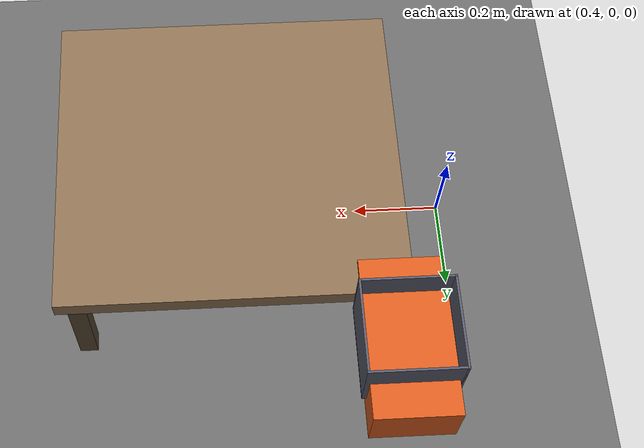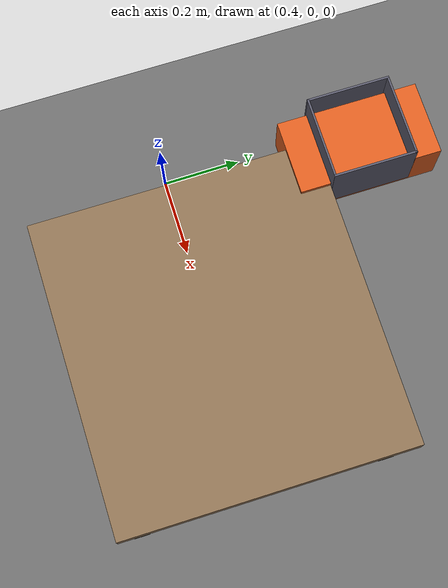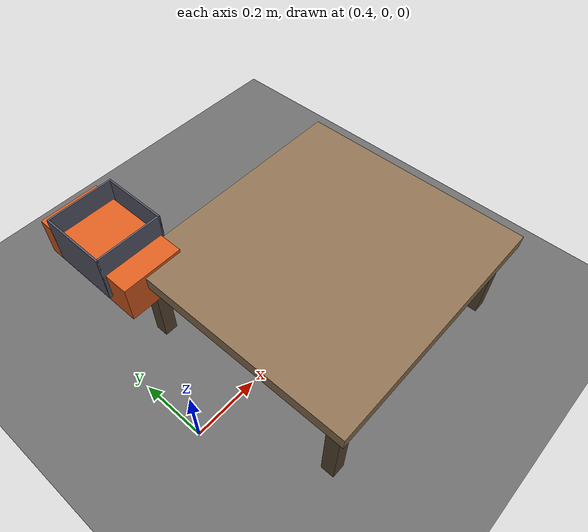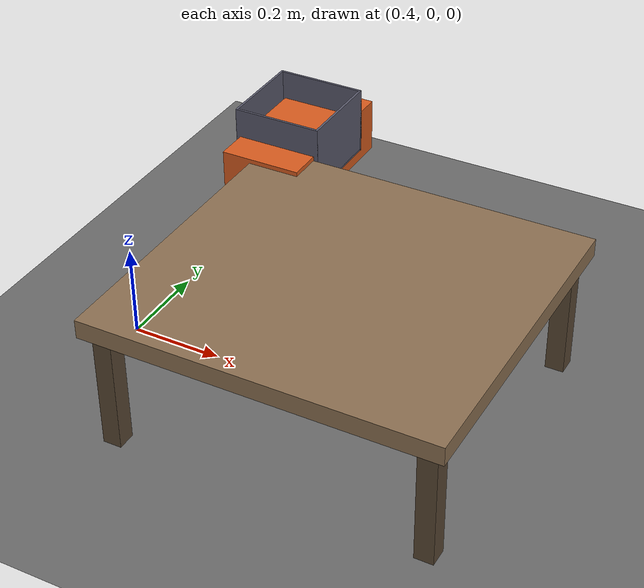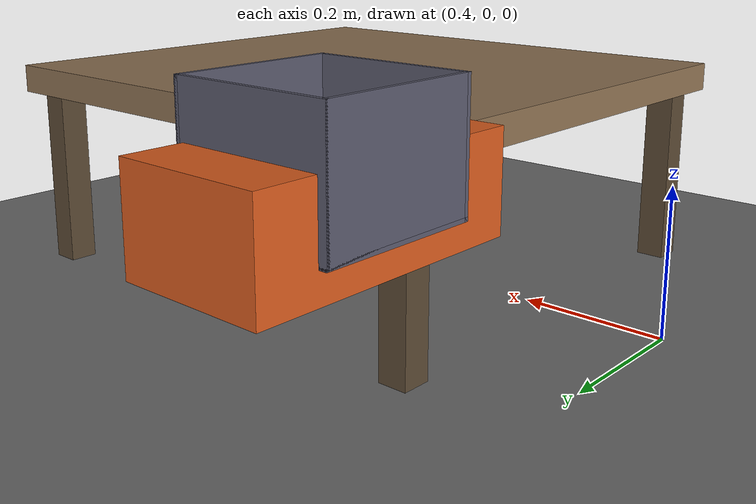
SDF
<?xml version="1.0" ?>
<sdf version="1.6">
  <world name="scene_b_bin_pick">
    <gravity>0 0 -9.81</gravity>

    <gui fullscreen="0">
      <camera name="user_camera">
        <pose>1.45 -1.25 0.85 0 0.48 2.35</pose>
        <view_controller>orbit</view_controller>
      </camera>
    </gui>

    <!-- 地面 -->
    <model name="ground_plane">
      <static>true</static>
      <link name="link">
        <collision name="collision">
          <geometry><plane><normal>0 0 1</normal><size>4 4</size></plane></geometry>
        </collision>
        <visual name="visual">
          <geometry><plane><normal>0 0 1</normal><size>4 4</size></plane></geometry>
          <material>
            <ambient>0.42 0.42 0.42 1</ambient>
            <diffuse>0.42 0.42 0.42 1</diffuse>
          </material>
        </visual>
      </link>
    </model>

    <!-- 光照 -->
    <light name="sun" type="directional">
      <cast_shadows>true</cast_shadows>
      <pose>0 0 5 0 0 0</pose>
      <diffuse>0.8 0.8 0.8 1</diffuse>
      <specular>0.2 0.2 0.2 1</specular>
      <attenuation>
        <range>1000</range><constant>0.9</constant>
        <linear>0.01</linear><quadratic>0.001</quadratic>
      </attenuation>
      <direction>-0.5 0.1 -0.9</direction>
    </light>

    <!-- 工作台 (x=0.90, top=0.30) -->
    <model name="work_table">
      <static>true</static>
      <pose>0.90 0 0 0 0 0</pose>
      <link name="table_link">
        <collision name="table_top_collision">
          <pose>0 0 0.28 0 0 0</pose>
          <geometry><box><size>0.75 0.70 0.04</size></box></geometry>
        </collision>
        <visual name="table_top_visual">
          <pose>0 0 0.28 0 0 0</pose>
          <geometry><box><size>0.75 0.70 0.04</size></box></geometry>
          <material>
            <ambient>0.55 0.44 0.32 1</ambient>
            <diffuse>0.55 0.44 0.32 1</diffuse>
          </material>
        </visual>
        <collision name="fl_leg_collision"><pose>-0.335 -0.31 0.13 0 0 0</pose>
          <geometry><box><size>0.04 0.04 0.26</size></box></geometry></collision>
        <visual name="fl_leg_visual"><pose>-0.335 -0.31 0.13 0 0 0</pose>
          <geometry><box><size>0.04 0.04 0.26</size></box></geometry>
          <material><ambient>0.35 0.28 0.20 1</ambient><diffuse>0.35 0.28 0.20 1</diffuse></material></visual>
        <collision name="fr_leg_collision"><pose>-0.335 0.31 0.13 0 0 0</pose>
          <geometry><box><size>0.04 0.04 0.26</size></box></geometry></collision>
        <visual name="fr_leg_visual"><pose>-0.335 0.31 0.13 0 0 0</pose>
          <geometry><box><size>0.04 0.04 0.26</size></box></geometry>
          <material><ambient>0.35 0.28 0.20 1</ambient><diffuse>0.35 0.28 0.20 1</diffuse></material></visual>
        <collision name="bl_leg_collision"><pose>0.335 -0.31 0.13 0 0 0</pose>
          <geometry><box><size>0.04 0.04 0.26</size></box></geometry></collision>
        <visual name="bl_leg_visual"><pose>0.335 -0.31 0.13 0 0 0</pose>
          <geometry><box><size>0.04 0.04 0.26</size></box></geometry>
          <material><ambient>0.35 0.28 0.20 1</ambient><diffuse>0.35 0.28 0.20 1</diffuse></material></visual>
        <collision name="br_leg_collision"><pose>0.335 0.31 0.13 0 0 0</pose>
          <geometry><box><size>0.04 0.04 0.26</size></box></geometry></collision>
        <visual name="br_leg_visual"><pose>0.335 0.31 0.13 0 0 0</pose>
          <geometry><box><size>0.04 0.04 0.26</size></box></geometry>
          <material><ambient>0.35 0.28 0.20 1</ambient><diffuse>0.35 0.28 0.20 1</diffuse></material></visual>
      </link>
    </model>

    <!-- 料框 (x=0.55, y=0.45, top=0.45) — 中空5壁结构 -->
    <model name="bin">
      <static>true</static>
      <pose>0.55 0.45 0.30 0 0 0</pose>
      <link name="bin_link">
        <!-- 底板 -->
        <collision name="bin_bottom"><pose>0 0 -0.0725 0 0 0</pose>
          <geometry><box><size>0.20 0.20 0.005</size></box></geometry></collision>
        <visual name="bin_bottom_vis"><pose>0 0 -0.0725 0 0 0</pose>
          <geometry><box><size>0.20 0.20 0.005</size></box></geometry>
          <material><ambient>0.35 0.35 0.42 1</ambient><diffuse>0.35 0.35 0.42 1</diffuse></material></visual>
        <!-- 前壁 +Y -->
        <collision name="bin_front"><pose>0 0.0975 0 0 0 0</pose>
          <geometry><box><size>0.20 0.005 0.15</size></box></geometry></collision>
        <visual name="bin_front_vis"><pose>0 0.0975 0 0 0 0</pose>
          <geometry><box><size>0.20 0.005 0.15</size></box></geometry>
          <material><ambient>0.35 0.35 0.42 1</ambient><diffuse>0.35 0.35 0.42 1</diffuse></material></visual>
        <!-- 后壁 -Y -->
        <collision name="bin_back"><pose>0 -0.0975 0 0 0 0</pose>
          <geometry><box><size>0.20 0.005 0.15</size></box></geometry></collision>
        <visual name="bin_back_vis"><pose>0 -0.0975 0 0 0 0</pose>
          <geometry><box><size>0.20 0.005 0.15</size></box></geometry>
          <material><ambient>0.35 0.35 0.42 1</ambient><diffuse>0.35 0.35 0.42 1</diffuse></material></visual>
        <!-- 左壁 +X -->
        <collision name="bin_left"><pose>0.0975 0 0 0 0 0</pose>
          <geometry><box><size>0.005 0.20 0.15</size></box></geometry></collision>
        <visual name="bin_left_vis"><pose>0.0975 0 0 0 0 0</pose>
          <geometry><box><size>0.005 0.20 0.15</size></box></geometry>
          <material><ambient>0.35 0.35 0.42 1</ambient><diffuse>0.35 0.35 0.42 1</diffuse></material></visual>
        <!-- 右壁 -X -->
        <collision name="bin_right"><pose>-0.0975 0 0 0 0 0</pose>
          <geometry><box><size>0.005 0.20 0.15</size></box></geometry></collision>
        <visual name="bin_right_vis"><pose>-0.0975 0 0 0 0 0</pose>
          <geometry><box><size>0.005 0.20 0.15</size></box></geometry>
          <material><ambient>0.35 0.35 0.42 1</ambient><diffuse>0.35 0.35 0.42 1</diffuse></material></visual>
      </link>
    </model>

    <!-- 货物在料框内 (x=0.55, y=0.45, z=0.25) -->
    <model name="cargo_box">
      <pose>0.55 0.45 0.25 0 0 0</pose>
      <link name="link">
        <inertial>
          <mass>1.0</mass>
          <inertia>
            <ixx>0.0111</ixx><iyy>0.0039</iyy><izz>0.0126</izz>
            <ixy>0</ixy><ixz>0</ixz><iyz>0</iyz>
          </inertia>
        </inertial>
        <collision name="collision">
          <geometry><box><size>0.18 0.345 0.12</size></box></geometry>
          <surface><friction><ode><mu>0.8</mu><mu2>0.8</mu2></ode></friction></surface>
        </collision>
        <visual name="visual">
          <geometry><box><size>0.18 0.345 0.12</size></box></geometry>
          <material>
            <ambient>0.85 0.36 0.12 1</ambient>
            <diffuse>0.85 0.36 0.12 1</diffuse>
          </material>
        </visual>
      </link>
    </model>

    <plugin name="gazebo_ros_state" filename="libgazebo_ros_state.so">
      <ros><namespace>/gazebo</namespace></ros>
      <update_rate>50.0</update_rate>
    </plugin>
  </world>
</sdf>
